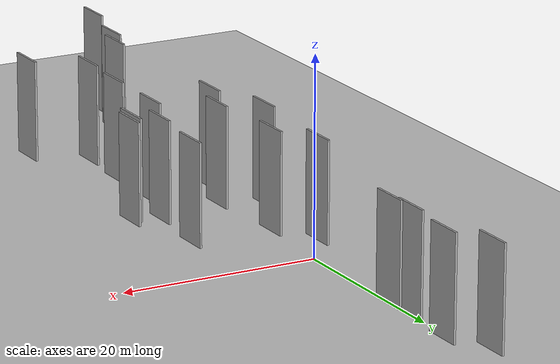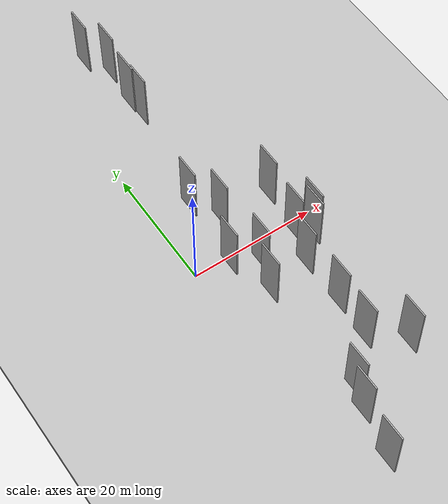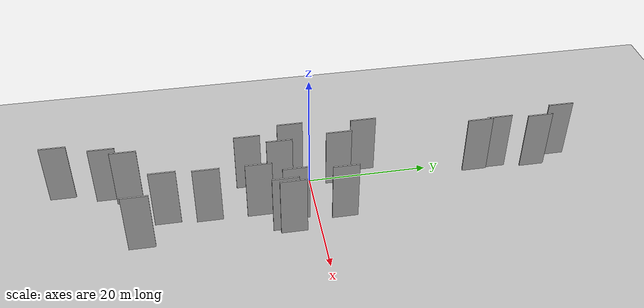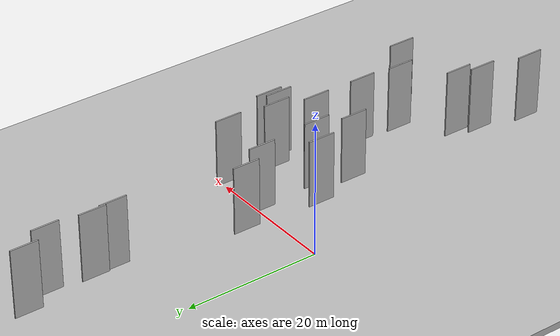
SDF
<?xml version="1.0" encoding="utf-8"?>

<sdf version="1.6">

   <world name="default">

      <gui fullscreen="0">

         <camera name="user_camera">

            <pose>-15 0 4.57585 0 0 0</pose>

            <view_controller>orbit</view_controller>

         </camera>

      </gui>

      <scene>

         <sky>

           <clouds>

             <speed>12</speed>

           </clouds>

         </sky>

         <ambient>0.4 0.4 0.4 1</ambient>

         <background>0.7 0.7 0.7 1</background>

         <shadows>1</shadows>

      </scene>

      <gravity>0 0 -9.8066</gravity>

      <magnetic_field>6e-06 2.3e-05 -4.2e-05</magnetic_field>

      <physics default="0" name="default_physics" type="ode">

         <ode>

            <solver>

               <type>quick</type>

               <iters>10</iters>

               <sor>1.0</sor>

               <use_dynamic_moi_rescaling>0</use_dynamic_moi_rescaling>

            </solver>

            <constraints>

               <cfm>0</cfm>

               <erp>0.2</erp>

               <contact_max_correcting_vel>100</contact_max_correcting_vel>

               <contact_surface_layer>0.001</contact_surface_layer>

            </constraints>

         </ode>

         <max_step_size>0.004</max_step_size>

         <real_time_factor>1</real_time_factor>

         <real_time_update_rate>250</real_time_update_rate>

      </physics>

      <light name="sun" type="directional">

         <cast_shadows>1</cast_shadows>

         <pose>0 0 10 0 0 0</pose>

         <diffuse>0.8 0.8 0.8 1</diffuse>

         <specular>0.2 0.2 0.2 1</specular>

         <attenuation>

            <range>1000</range>

            <constant>0.9</constant>

            <linear>0.01</linear>

            <quadratic>0.001</quadratic>

         </attenuation>

         <direction>-0.5 0.1 -0.9</direction>

      </light>

      <include>

         <name>ground_plane_1</name>

         <uri>model://HANNAS_ground_plane</uri>

         <pose>0 0 0  0 0 0</pose>

      </include>

      <include>

         <name>ground_plane_2</name>

         <uri>model://HANNAS_ground_plane</uri>

         <pose>100 0 0  0 0 0</pose>

      </include>

      <model name="HANNAS_wall_1">

         <static>1</static>

         <pose frame="">5.5036 39.7139 5.0 0.000000 0.000000 1.570796</pose>

         <link name="link">

            <pose frame="">0 0 5.00 0 0 0</pose>

            <collision name="collision">

               <geometry>

                  <box>

                     <size>4.00 0.2 10.00</size>

                  </box>

               </geometry>

               <max_contacts>10</max_contacts>

               <surface>

                  <contact>

                     <ode/>

                  </contact>

                  <bounce/>

                  <friction>

                     <torsional>

                        <ode/>

                     </torsional>

                     <ode/>

                  </friction>

               </surface>

            </collision>

            <visual name="visual">

               <cast_shadows>0</cast_shadows>

               <geometry>

                  <box>

                     <size>4.00 0.2 10.00</size>

                  </box>

               </geometry>

               <material>

                  <script>

                     <uri>model://HANNAS_wall/materials/scripts</uri>

                     <uri>model://HANNAS_wall/materials/textures</uri>

                     <name>vrc/HANNAS_wall</name>

                  </script>

               </material>

            </visual>

            <self_collide>0</self_collide>

            <enable_wind>0</enable_wind>

            <kinematic>0</kinematic>

         </link>

      </model>

      <model name="HANNAS_wall_2">

         <static>1</static>

         <pose frame="">16.4278 -27.5203 5.0 0.000000 0.000000 1.570796</pose>

         <link name="link">

            <pose frame="">0 0 5.00 0 0 0</pose>

            <collision name="collision">

               <geometry>

                  <box>

                     <size>4.00 0.2 10.00</size>

                  </box>

               </geometry>

               <max_contacts>10</max_contacts>

               <surface>

                  <contact>

                     <ode/>

                  </contact>

                  <bounce/>

                  <friction>

                     <torsional>

                        <ode/>

                     </torsional>

                     <ode/>

                  </friction>

               </surface>

            </collision>

            <visual name="visual">

               <cast_shadows>0</cast_shadows>

               <geometry>

                  <box>

                     <size>4.00 0.2 10.00</size>

                  </box>

               </geometry>

               <material>

                  <script>

                     <uri>model://HANNAS_wall/materials/scripts</uri>

                     <uri>model://HANNAS_wall/materials/textures</uri>

                     <name>vrc/HANNAS_wall</name>

                  </script>

               </material>

            </visual>

            <self_collide>0</self_collide>

            <enable_wind>0</enable_wind>

            <kinematic>0</kinematic>

         </link>

      </model>

      <model name="HANNAS_wall_3">

         <static>1</static>

         <pose frame="">16.0051 -6.0341 5.0 0.000000 0.000000 1.570796</pose>

         <link name="link">

            <pose frame="">0 0 5.00 0 0 0</pose>

            <collision name="collision">

               <geometry>

                  <box>

                     <size>4.00 0.2 10.00</size>

                  </box>

               </geometry>

               <max_contacts>10</max_contacts>

               <surface>

                  <contact>

                     <ode/>

                  </contact>

                  <bounce/>

                  <friction>

                     <torsional>

                        <ode/>

                     </torsional>

                     <ode/>

                  </friction>

               </surface>

            </collision>

            <visual name="visual">

               <cast_shadows>0</cast_shadows>

               <geometry>

                  <box>

                     <size>4.00 0.2 10.00</size>

                  </box>

               </geometry>

               <material>

                  <script>

                     <uri>model://HANNAS_wall/materials/scripts</uri>

                     <uri>model://HANNAS_wall/materials/textures</uri>

                     <name>vrc/HANNAS_wall</name>

                  </script>

               </material>

            </visual>

            <self_collide>0</self_collide>

            <enable_wind>0</enable_wind>

            <kinematic>0</kinematic>

         </link>

      </model>

      <model name="HANNAS_wall_4">

         <static>1</static>

         <pose frame="">6.1232 -29.0884 5.0 0.000000 0.000000 1.570796</pose>

         <link name="link">

            <pose frame="">0 0 5.00 0 0 0</pose>

            <collision name="collision">

               <geometry>

                  <box>

                     <size>4.00 0.2 10.00</size>

                  </box>

               </geometry>

               <max_contacts>10</max_contacts>

               <surface>

                  <contact>

                     <ode/>

                  </contact>

                  <bounce/>

                  <friction>

                     <torsional>

                        <ode/>

                     </torsional>

                     <ode/>

                  </friction>

               </surface>

            </collision>

            <visual name="visual">

               <cast_shadows>0</cast_shadows>

               <geometry>

                  <box>

                     <size>4.00 0.2 10.00</size>

                  </box>

               </geometry>

               <material>

                  <script>

                     <uri>model://HANNAS_wall/materials/scripts</uri>

                     <uri>model://HANNAS_wall/materials/textures</uri>

                     <name>vrc/HANNAS_wall</name>

                  </script>

               </material>

            </visual>

            <self_collide>0</self_collide>

            <enable_wind>0</enable_wind>

            <kinematic>0</kinematic>

         </link>

      </model>

      <model name="HANNAS_wall_5">

         <static>1</static>

         <pose frame="">6.6425 3.5572 5.0 0.000000 0.000000 1.570796</pose>

         <link name="link">

            <pose frame="">0 0 5.00 0 0 0</pose>

            <collision name="collision">

               <geometry>

                  <box>

                     <size>4.00 0.2 10.00</size>

                  </box>

               </geometry>

               <max_contacts>10</max_contacts>

               <surface>

                  <contact>

                     <ode/>

                  </contact>

                  <bounce/>

                  <friction>

                     <torsional>

                        <ode/>

                     </torsional>

                     <ode/>

                  </friction>

               </surface>

            </collision>

            <visual name="visual">

               <cast_shadows>0</cast_shadows>

               <geometry>

                  <box>

                     <size>4.00 0.2 10.00</size>

                  </box>

               </geometry>

               <material>

                  <script>

                     <uri>model://HANNAS_wall/materials/scripts</uri>

                     <uri>model://HANNAS_wall/materials/textures</uri>

                     <name>vrc/HANNAS_wall</name>

                  </script>

               </material>

            </visual>

            <self_collide>0</self_collide>

            <enable_wind>0</enable_wind>

            <kinematic>0</kinematic>

         </link>

      </model>

      <model name="HANNAS_wall_6">

         <static>1</static>

         <pose frame="">4.1509 7.8502 5.0 0.000000 0.000000 1.570796</pose>

         <link name="link">

            <pose frame="">0 0 5.00 0 0 0</pose>

            <collision name="collision">

               <geometry>

                  <box>

                     <size>4.00 0.2 10.00</size>

                  </box>

               </geometry>

               <max_contacts>10</max_contacts>

               <surface>

                  <contact>

                     <ode/>

                  </contact>

                  <bounce/>

                  <friction>

                     <torsional>

                        <ode/>

                     </torsional>

                     <ode/>

                  </friction>

               </surface>

            </collision>

            <visual name="visual">

               <cast_shadows>0</cast_shadows>

               <geometry>

                  <box>

                     <size>4.00 0.2 10.00</size>

                  </box>

               </geometry>

               <material>

                  <script>

                     <uri>model://HANNAS_wall/materials/scripts</uri>

                     <uri>model://HANNAS_wall/materials/textures</uri>

                     <name>vrc/HANNAS_wall</name>

                  </script>

               </material>

            </visual>

            <self_collide>0</self_collide>

            <enable_wind>0</enable_wind>

            <kinematic>0</kinematic>

         </link>

      </model>

      <model name="HANNAS_wall_7">

         <static>1</static>

         <pose frame="">3.4086 -3.6073 5.0 0.000000 0.000000 1.570796</pose>

         <link name="link">

            <pose frame="">0 0 5.00 0 0 0</pose>

            <collision name="collision">

               <geometry>

                  <box>

                     <size>4.00 0.2 10.00</size>

                  </box>

               </geometry>

               <max_contacts>10</max_contacts>

               <surface>

                  <contact>

                     <ode/>

                  </contact>

                  <bounce/>

                  <friction>

                     <torsional>

                        <ode/>

                     </torsional>

                     <ode/>

                  </friction>

               </surface>

            </collision>

            <visual name="visual">

               <cast_shadows>0</cast_shadows>

               <geometry>

                  <box>

                     <size>4.00 0.2 10.00</size>

                  </box>

               </geometry>

               <material>

                  <script>

                     <uri>model://HANNAS_wall/materials/scripts</uri>

                     <uri>model://HANNAS_wall/materials/textures</uri>

                     <name>vrc/HANNAS_wall</name>

                  </script>

               </material>

            </visual>

            <self_collide>0</self_collide>

            <enable_wind>0</enable_wind>

            <kinematic>0</kinematic>

         </link>

      </model>

      <model name="HANNAS_wall_8">

         <static>1</static>

         <pose frame="">7.6550 35.4938 5.0 0.000000 0.000000 1.570796</pose>

         <link name="link">

            <pose frame="">0 0 5.00 0 0 0</pose>

            <collision name="collision">

               <geometry>

                  <box>

                     <size>4.00 0.2 10.00</size>

                  </box>

               </geometry>

               <max_contacts>10</max_contacts>

               <surface>

                  <contact>

                     <ode/>

                  </contact>

                  <bounce/>

                  <friction>

                     <torsional>

                        <ode/>

                     </torsional>

                     <ode/>

                  </friction>

               </surface>

            </collision>

            <visual name="visual">

               <cast_shadows>0</cast_shadows>

               <geometry>

                  <box>

                     <size>4.00 0.2 10.00</size>

                  </box>

               </geometry>

               <material>

                  <script>

                     <uri>model://HANNAS_wall/materials/scripts</uri>

                     <uri>model://HANNAS_wall/materials/textures</uri>

                     <name>vrc/HANNAS_wall</name>

                  </script>

               </material>

            </visual>

            <self_collide>0</self_collide>

            <enable_wind>0</enable_wind>

            <kinematic>0</kinematic>

         </link>

      </model>

      <model name="HANNAS_wall_9">

         <static>1</static>

         <pose frame="">7.2434 -5.7421 5.0 0.000000 0.000000 1.570796</pose>

         <link name="link">

            <pose frame="">0 0 5.00 0 0 0</pose>

            <collision name="collision">

               <geometry>

                  <box>

                     <size>4.00 0.2 10.00</size>

                  </box>

               </geometry>

               <max_contacts>10</max_contacts>

               <surface>

                  <contact>

                     <ode/>

                  </contact>

                  <bounce/>

                  <friction>

                     <torsional>

                        <ode/>

                     </torsional>

                     <ode/>

                  </friction>

               </surface>

            </collision>

            <visual name="visual">

               <cast_shadows>0</cast_shadows>

               <geometry>

                  <box>

                     <size>4.00 0.2 10.00</size>

                  </box>

               </geometry>

               <material>

                  <script>

                     <uri>model://HANNAS_wall/materials/scripts</uri>

                     <uri>model://HANNAS_wall/materials/textures</uri>

                     <name>vrc/HANNAS_wall</name>

                  </script>

               </material>

            </visual>

            <self_collide>0</self_collide>

            <enable_wind>0</enable_wind>

            <kinematic>0</kinematic>

         </link>

      </model>

      <model name="HANNAS_wall_10">

         <static>1</static>

         <pose frame="">12.2545 -9.5130 5.0 0.000000 0.000000 1.570796</pose>

         <link name="link">

            <pose frame="">0 0 5.00 0 0 0</pose>

            <collision name="collision">

               <geometry>

                  <box>

                     <size>4.00 0.2 10.00</size>

                  </box>

               </geometry>

               <max_contacts>10</max_contacts>

               <surface>

                  <contact>

                     <ode/>

                  </contact>

                  <bounce/>

                  <friction>

                     <torsional>

                        <ode/>

                     </torsional>

                     <ode/>

                  </friction>

               </surface>

            </collision>

            <visual name="visual">

               <cast_shadows>0</cast_shadows>

               <geometry>

                  <box>

                     <size>4.00 0.2 10.00</size>

                  </box>

               </geometry>

               <material>

                  <script>

                     <uri>model://HANNAS_wall/materials/scripts</uri>

                     <uri>model://HANNAS_wall/materials/textures</uri>

                     <name>vrc/HANNAS_wall</name>

                  </script>

               </material>

            </visual>

            <self_collide>0</self_collide>

            <enable_wind>0</enable_wind>

            <kinematic>0</kinematic>

         </link>

      </model>

      <model name="HANNAS_wall_11">

         <static>1</static>

         <pose frame="">4.9064 -32.2699 5.0 0.000000 0.000000 1.570796</pose>

         <link name="link">

            <pose frame="">0 0 5.00 0 0 0</pose>

            <collision name="collision">

               <geometry>

                  <box>

                     <size>4.00 0.2 10.00</size>

                  </box>

               </geometry>

               <max_contacts>10</max_contacts>

               <surface>

                  <contact>

                     <ode/>

                  </contact>

                  <bounce/>

                  <friction>

                     <torsional>

                        <ode/>

                     </torsional>

                     <ode/>

                  </friction>

               </surface>

            </collision>

            <visual name="visual">

               <cast_shadows>0</cast_shadows>

               <geometry>

                  <box>

                     <size>4.00 0.2 10.00</size>

                  </box>

               </geometry>

               <material>

                  <script>

                     <uri>model://HANNAS_wall/materials/scripts</uri>

                     <uri>model://HANNAS_wall/materials/textures</uri>

                     <name>vrc/HANNAS_wall</name>

                  </script>

               </material>

            </visual>

            <self_collide>0</self_collide>

            <enable_wind>0</enable_wind>

            <kinematic>0</kinematic>

         </link>

      </model>

      <model name="HANNAS_wall_12">

         <static>1</static>

         <pose frame="">7.2723 25.9107 5.0 0.000000 0.000000 1.570796</pose>

         <link name="link">

            <pose frame="">0 0 5.00 0 0 0</pose>

            <collision name="collision">

               <geometry>

                  <box>

                     <size>4.00 0.2 10.00</size>

                  </box>

               </geometry>

               <max_contacts>10</max_contacts>

               <surface>

                  <contact>

                     <ode/>

                  </contact>

                  <bounce/>

                  <friction>

                     <torsional>

                        <ode/>

                     </torsional>

                     <ode/>

                  </friction>

               </surface>

            </collision>

            <visual name="visual">

               <cast_shadows>0</cast_shadows>

               <geometry>

                  <box>

                     <size>4.00 0.2 10.00</size>

                  </box>

               </geometry>

               <material>

                  <script>

                     <uri>model://HANNAS_wall/materials/scripts</uri>

                     <uri>model://HANNAS_wall/materials/textures</uri>

                     <name>vrc/HANNAS_wall</name>

                  </script>

               </material>

            </visual>

            <self_collide>0</self_collide>

            <enable_wind>0</enable_wind>

            <kinematic>0</kinematic>

         </link>

      </model>

      <model name="HANNAS_wall_13">

         <static>1</static>

         <pose frame="">11.7815 -23.5254 5.0 0.000000 0.000000 1.570796</pose>

         <link name="link">

            <pose frame="">0 0 5.00 0 0 0</pose>

            <collision name="collision">

               <geometry>

                  <box>

                     <size>4.00 0.2 10.00</size>

                  </box>

               </geometry>

               <max_contacts>10</max_contacts>

               <surface>

                  <contact>

                     <ode/>

                  </contact>

                  <bounce/>

                  <friction>

                     <torsional>

                        <ode/>

                     </torsional>

                     <ode/>

                  </friction>

               </surface>

            </collision>

            <visual name="visual">

               <cast_shadows>0</cast_shadows>

               <geometry>

                  <box>

                     <size>4.00 0.2 10.00</size>

                  </box>

               </geometry>

               <material>

                  <script>

                     <uri>model://HANNAS_wall/materials/scripts</uri>

                     <uri>model://HANNAS_wall/materials/textures</uri>

                     <name>vrc/HANNAS_wall</name>

                  </script>

               </material>

            </visual>

            <self_collide>0</self_collide>

            <enable_wind>0</enable_wind>

            <kinematic>0</kinematic>

         </link>

      </model>

      <model name="HANNAS_wall_14">

         <static>1</static>

         <pose frame="">16.7226 -4.9781 5.0 0.000000 0.000000 1.570796</pose>

         <link name="link">

            <pose frame="">0 0 5.00 0 0 0</pose>

            <collision name="collision">

               <geometry>

                  <box>

                     <size>4.00 0.2 10.00</size>

                  </box>

               </geometry>

               <max_contacts>10</max_contacts>

               <surface>

                  <contact>

                     <ode/>

                  </contact>

                  <bounce/>

                  <friction>

                     <torsional>

                        <ode/>

                     </torsional>

                     <ode/>

                  </friction>

               </surface>

            </collision>

            <visual name="visual">

               <cast_shadows>0</cast_shadows>

               <geometry>

                  <box>

                     <size>4.00 0.2 10.00</size>

                  </box>

               </geometry>

               <material>

                  <script>

                     <uri>model://HANNAS_wall/materials/scripts</uri>

                     <uri>model://HANNAS_wall/materials/textures</uri>

                     <name>vrc/HANNAS_wall</name>

                  </script>

               </material>

            </visual>

            <self_collide>0</self_collide>

            <enable_wind>0</enable_wind>

            <kinematic>0</kinematic>

         </link>

      </model>

      <model name="HANNAS_wall_15">

         <static>1</static>

         <pose frame="">14.6927 3.1344 5.0 0.000000 0.000000 1.570796</pose>

         <link name="link">

            <pose frame="">0 0 5.00 0 0 0</pose>

            <collision name="collision">

               <geometry>

                  <box>

                     <size>4.00 0.2 10.00</size>

                  </box>

               </geometry>

               <max_contacts>10</max_contacts>

               <surface>

                  <contact>

                     <ode/>

                  </contact>

                  <bounce/>

                  <friction>

                     <torsional>

                        <ode/>

                     </torsional>

                     <ode/>

                  </friction>

               </surface>

            </collision>

            <visual name="visual">

               <cast_shadows>0</cast_shadows>

               <geometry>

                  <box>

                     <size>4.00 0.2 10.00</size>

                  </box>

               </geometry>

               <material>

                  <script>

                     <uri>model://HANNAS_wall/materials/scripts</uri>

                     <uri>model://HANNAS_wall/materials/textures</uri>

                     <name>vrc/HANNAS_wall</name>

                  </script>

               </material>

            </visual>

            <self_collide>0</self_collide>

            <enable_wind>0</enable_wind>

            <kinematic>0</kinematic>

         </link>

      </model>

      <model name="HANNAS_wall_16">

         <static>1</static>

         <pose frame="">3.3518 -39.4541 5.0 0.000000 0.000000 1.570796</pose>

         <link name="link">

            <pose frame="">0 0 5.00 0 0 0</pose>

            <collision name="collision">

               <geometry>

                  <box>

                     <size>4.00 0.2 10.00</size>

                  </box>

               </geometry>

               <max_contacts>10</max_contacts>

               <surface>

                  <contact>

                     <ode/>

                  </contact>

                  <bounce/>

                  <friction>

                     <torsional>

                        <ode/>

                     </torsional>

                     <ode/>

                  </friction>

               </surface>

            </collision>

            <visual name="visual">

               <cast_shadows>0</cast_shadows>

               <geometry>

                  <box>

                     <size>4.00 0.2 10.00</size>

                  </box>

               </geometry>

               <material>

                  <script>

                     <uri>model://HANNAS_wall/materials/scripts</uri>

                     <uri>model://HANNAS_wall/materials/textures</uri>

                     <name>vrc/HANNAS_wall</name>

                  </script>

               </material>

            </visual>

            <self_collide>0</self_collide>

            <enable_wind>0</enable_wind>

            <kinematic>0</kinematic>

         </link>

      </model>

      <model name="HANNAS_wall_17">

         <static>1</static>

         <pose frame="">14.0052 -4.2086 5.0 0.000000 0.000000 1.570796</pose>

         <link name="link">

            <pose frame="">0 0 5.00 0 0 0</pose>

            <collision name="collision">

               <geometry>

                  <box>

                     <size>4.00 0.2 10.00</size>

                  </box>

               </geometry>

               <max_contacts>10</max_contacts>

               <surface>

                  <contact>

                     <ode/>

                  </contact>

                  <bounce/>

                  <friction>

                     <torsional>

                        <ode/>

                     </torsional>

                     <ode/>

                  </friction>

               </surface>

            </collision>

            <visual name="visual">

               <cast_shadows>0</cast_shadows>

               <geometry>

                  <box>

                     <size>4.00 0.2 10.00</size>

                  </box>

               </geometry>

               <material>

                  <script>

                     <uri>model://HANNAS_wall/materials/scripts</uri>

                     <uri>model://HANNAS_wall/materials/textures</uri>

                     <name>vrc/HANNAS_wall</name>

                  </script>

               </material>

            </visual>

            <self_collide>0</self_collide>

            <enable_wind>0</enable_wind>

            <kinematic>0</kinematic>

         </link>

      </model>

      <model name="HANNAS_wall_18">

         <static>1</static>

         <pose frame="">7.0423 29.0544 5.0 0.000000 0.000000 1.570796</pose>

         <link name="link">

            <pose frame="">0 0 5.00 0 0 0</pose>

            <collision name="collision">

               <geometry>

                  <box>

                     <size>4.00 0.2 10.00</size>

                  </box>

               </geometry>

               <max_contacts>10</max_contacts>

               <surface>

                  <contact>

                     <ode/>

                  </contact>

                  <bounce/>

                  <friction>

                     <torsional>

                        <ode/>

                     </torsional>

                     <ode/>

                  </friction>

               </surface>

            </collision>

            <visual name="visual">

               <cast_shadows>0</cast_shadows>

               <geometry>

                  <box>

                     <size>4.00 0.2 10.00</size>

                  </box>

               </geometry>

               <material>

                  <script>

                     <uri>model://HANNAS_wall/materials/scripts</uri>

                     <uri>model://HANNAS_wall/materials/textures</uri>

                     <name>vrc/HANNAS_wall</name>

                  </script>

               </material>

            </visual>

            <self_collide>0</self_collide>

            <enable_wind>0</enable_wind>

            <kinematic>0</kinematic>

         </link>

      </model>

      <model name="HANNAS_wall_19">

         <static>1</static>

         <pose frame="">12.1872 -17.2245 5.0 0.000000 0.000000 1.570796</pose>

         <link name="link">

            <pose frame="">0 0 5.00 0 0 0</pose>

            <collision name="collision">

               <geometry>

                  <box>

                     <size>4.00 0.2 10.00</size>

                  </box>

               </geometry>

               <max_contacts>10</max_contacts>

               <surface>

                  <contact>

                     <ode/>

                  </contact>

                  <bounce/>

                  <friction>

                     <torsional>

                        <ode/>

                     </torsional>

                     <ode/>

                  </friction>

               </surface>

            </collision>

            <visual name="visual">

               <cast_shadows>0</cast_shadows>

               <geometry>

                  <box>

                     <size>4.00 0.2 10.00</size>

                  </box>

               </geometry>

               <material>

                  <script>

                     <uri>model://HANNAS_wall/materials/scripts</uri>

                     <uri>model://HANNAS_wall/materials/textures</uri>

                     <name>vrc/HANNAS_wall</name>

                  </script>

               </material>

            </visual>

            <self_collide>0</self_collide>

            <enable_wind>0</enable_wind>

            <kinematic>0</kinematic>

         </link>

      </model>

      <model name="HANNAS_wall_20">

         <static>1</static>

         <pose frame="">5.4469 -10.5104 5.0 0.000000 0.000000 1.570796</pose>

         <link name="link">

            <pose frame="">0 0 5.00 0 0 0</pose>

            <collision name="collision">

               <geometry>

                  <box>

                     <size>4.00 0.2 10.00</size>

                  </box>

               </geometry>

               <max_contacts>10</max_contacts>

               <surface>

                  <contact>

                     <ode/>

                  </contact>

                  <bounce/>

                  <friction>

                     <torsional>

                        <ode/>

                     </torsional>

                     <ode/>

                  </friction>

               </surface>

            </collision>

            <visual name="visual">

               <cast_shadows>0</cast_shadows>

               <geometry>

                  <box>

                     <size>4.00 0.2 10.00</size>

                  </box>

               </geometry>

               <material>

                  <script>

                     <uri>model://HANNAS_wall/materials/scripts</uri>

                     <uri>model://HANNAS_wall/materials/textures</uri>

                     <name>vrc/HANNAS_wall</name>

                  </script>

               </material>

            </visual>

            <self_collide>0</self_collide>

            <enable_wind>0</enable_wind>

            <kinematic>0</kinematic>

         </link>

      </model>

   </world>

</sdf>

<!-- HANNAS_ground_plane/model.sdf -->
<sdf version="1.4">
<model name="HANNAS_ground_plane">
  <static>true</static>
    <link name="link">
      <collision name="collision">
        <geometry>
          <plane>
            <normal>0 0 1</normal>
            <size>1000 1000</size>
          </plane>
        </geometry>
        <surface>
          <friction>
            <ode>
              <mu>100</mu>
              <mu2>50</mu2>
            </ode>
          </friction>
        </surface>
      </collision>
      <visual name="visual">
        <cast_shadows>false</cast_shadows>
        <geometry>
          <plane>
            <normal>0 0 1</normal>
            <size>1000 1000</size>
          </plane>
        </geometry>
        <material>
          <script>
            <uri>model://HANNAS_ground_plane/materials/scripts/HANNAS_ground_plane.material</uri>
	    <uri>model://HANNAS_ground_plane/materials/textures</uri>
            <name>HANNASGroundPlane/Image</name>
          </script>
        </material>
      </visual>
    </link>
  </model>
</sdf>
